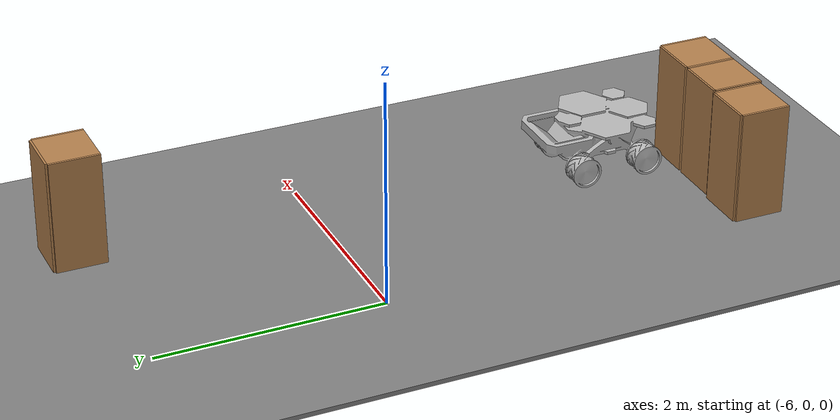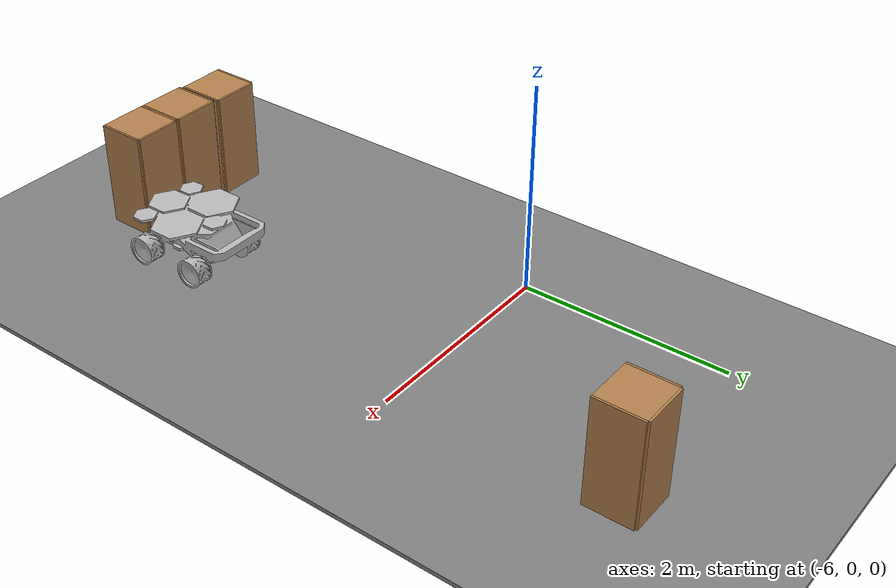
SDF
<sdf version="1.7">
 <world name="default">
  <model name="cabinet_clone">
   <static>1</static>
   <link name="cabinet_bottom_plate">
    <inertial>
     <pose>0 0 -1 0 -0 0</pose>
     <inertia><ixx>2.05</ixx><ixy>0</ixy><ixz>0</ixz><iyy>2.05</iyy><iyz>0</iyz><izz>2.05</izz></inertia>
     <mass>25</mass>
    </inertial>
    <collision name="cabinet_bottom_plate_geom">
     <pose>0 0 0.01 0 -0 0</pose>
     <geometry><box><size>0.45 0.45 0.02</size></box></geometry>
    </collision>
    <visual name="cabinet_bottom_plate_geom_visual">
     <pose>0 0 0.01 0 -0 0</pose>
     <geometry><box><size>0.45 0.45 0.02</size></box></geometry>
     <material>
      <script><uri>file://media/materials/scripts/gazebo.material</uri><name>Gazebo/Wood</name></script>
      <ambient>0.55 0.34 0.16 1</ambient>
      <diffuse>0.55 0.34 0.16 1</diffuse>
      <specular>0.08 0.08 0.08 1</specular>
      <emissive>0 0 0 1</emissive>
     </material>
    </visual>
    <collision name="cabinet_bottom_plate_geom_cabinet_back_plate">
     <pose>0.235 0 0.51 0 -0 0</pose>
     <geometry><box><size>0.02 0.45 1.02</size></box></geometry>
    </collision>
    <visual name="cabinet_bottom_plate_geom_cabinet_back_plate_visual">
     <pose>0.235 0 0.51 0 -0 0</pose>
     <geometry><box><size>0.02 0.45 1.02</size></box></geometry>
     <material>
      <script><uri>file://media/materials/scripts/gazebo.material</uri><name>Gazebo/Wood</name></script>
      <ambient>0.55 0.34 0.16 1</ambient>
      <diffuse>0.55 0.34 0.16 1</diffuse>
      <specular>0.08 0.08 0.08 1</specular>
      <emissive>0 0 0 1</emissive>
     </material>
    </visual>
    <collision name="cabinet_bottom_plate_geom_cabinet_left_plate">
     <pose>0 0.235 0.51 0 -0 0</pose>
     <geometry><box><size>0.45 0.02 1.02</size></box></geometry>
    </collision>
    <visual name="cabinet_bottom_plate_geom_cabinet_left_plate_visual">
     <pose>0 0.235 0.51 0 -0 0</pose>
     <geometry><box><size>0.45 0.02 1.02</size></box></geometry>
     <material>
      <script><uri>file://media/materials/scripts/gazebo.material</uri><name>Gazebo/Wood</name></script>
      <ambient>0.55 0.34 0.16 1</ambient>
      <diffuse>0.55 0.34 0.16 1</diffuse>
      <specular>0.08 0.08 0.08 1</specular>
      <emissive>0 0 0 1</emissive>
     </material>
    </visual>
    <collision name="cabinet_bottom_plate_geom_cabinet_middle_plate">
     <pose>0 0 0.51 0 -0 0</pose>
     <geometry><box><size>0.45 0.45 0.02</size></box></geometry>
    </collision>
    <visual name="cabinet_bottom_plate_geom_cabinet_middle_plate_visual">
     <pose>0 0 0.51 0 -0 0</pose>
     <geometry><box><size>0.45 0.45 0.02</size></box></geometry>
     <material>
      <script><uri>file://media/materials/scripts/gazebo.material</uri><name>Gazebo/Wood</name></script>
      <ambient>0.55 0.34 0.16 1</ambient>
      <diffuse>0.55 0.34 0.16 1</diffuse>
      <specular>0.08 0.08 0.08 1</specular>
      <emissive>0 0 0 1</emissive>
     </material>
    </visual>
    <collision name="cabinet_bottom_plate_geom_cabinet_right_plate">
     <pose>0 -0.235 0.51 0 -0 0</pose>
     <geometry><box><size>0.45 0.02 1.02</size></box></geometry>
    </collision>
    <visual name="cabinet_bottom_plate_geom_cabinet_right_plate_visual">
     <pose>0 -0.235 0.51 0 -0 0</pose>
     <geometry><box><size>0.45 0.02 1.02</size></box></geometry>
     <material>
      <script><uri>file://media/materials/scripts/gazebo.material</uri><name>Gazebo/Wood</name></script>
      <ambient>0.55 0.34 0.16 1</ambient>
      <diffuse>0.55 0.34 0.16 1</diffuse>
      <specular>0.08 0.08 0.08 1</specular>
      <emissive>0 0 0 1</emissive>
     </material>
    </visual>
    <collision name="cabinet_bottom_plate_geom_cabinet_top_plate">
     <pose>0 0 1.01 0 -0 0</pose>
     <geometry><box><size>0.45 0.45 0.02</size></box></geometry>
    </collision>
    <visual name="cabinet_bottom_plate_geom_cabinet_top_plate_visual">
     <pose>0 0 1.01 0 -0 0</pose>
     <geometry><box><size>0.45 0.45 0.02</size></box></geometry>
     <material>
      <script><uri>file://media/materials/scripts/gazebo.material</uri><name>Gazebo/Wood</name></script>
      <ambient>0.55 0.34 0.16 1</ambient>
      <diffuse>0.55 0.34 0.16 1</diffuse>
      <specular>0.08 0.08 0.08 1</specular>
      <emissive>0 0 0 1</emissive>
     </material>
    </visual>
   </link>
   <pose>-5.25916 -3.50994 0 0 -0 1.57</pose>
  </model>
  <model name="cabinet_clone_0">
   <static>1</static>
   <link name="cabinet_bottom_plate">
    <inertial>
     <pose>0 0 -1 0 -0 0</pose>
     <inertia><ixx>2.05</ixx><ixy>0</ixy><ixz>0</ixz><iyy>2.05</iyy><iyz>0</iyz><izz>2.05</izz></inertia>
     <mass>25</mass>
    </inertial>
    <collision name="cabinet_bottom_plate_geom">
     <pose>0 0 0.01 0 -0 0</pose>
     <geometry><box><size>0.45 0.45 0.02</size></box></geometry>
    </collision>
    <visual name="cabinet_bottom_plate_geom_visual">
     <pose>0 0 0.01 0 -0 0</pose>
     <geometry><box><size>0.45 0.45 0.02</size></box></geometry>
     <material>
      <script><uri>file://media/materials/scripts/gazebo.material</uri><name>Gazebo/Wood</name></script>
      <ambient>0.55 0.34 0.16 1</ambient>
      <diffuse>0.55 0.34 0.16 1</diffuse>
      <specular>0.08 0.08 0.08 1</specular>
      <emissive>0 0 0 1</emissive>
     </material>
    </visual>
    <collision name="cabinet_bottom_plate_geom_cabinet_back_plate">
     <pose>0.235 0 0.51 0 -0 0</pose>
     <geometry><box><size>0.02 0.45 1.02</size></box></geometry>
    </collision>
    <visual name="cabinet_bottom_plate_geom_cabinet_back_plate_visual">
     <pose>0.235 0 0.51 0 -0 0</pose>
     <geometry><box><size>0.02 0.45 1.02</size></box></geometry>
     <material>
      <script><uri>file://media/materials/scripts/gazebo.material</uri><name>Gazebo/Wood</name></script>
      <ambient>0.55 0.34 0.16 1</ambient>
      <diffuse>0.55 0.34 0.16 1</diffuse>
      <specular>0.08 0.08 0.08 1</specular>
      <emissive>0 0 0 1</emissive>
     </material>
    </visual>
    <collision name="cabinet_bottom_plate_geom_cabinet_left_plate">
     <pose>0 0.235 0.51 0 -0 0</pose>
     <geometry><box><size>0.45 0.02 1.02</size></box></geometry>
    </collision>
    <visual name="cabinet_bottom_plate_geom_cabinet_left_plate_visual">
     <pose>0 0.235 0.51 0 -0 0</pose>
     <geometry><box><size>0.45 0.02 1.02</size></box></geometry>
     <material>
      <script><uri>file://media/materials/scripts/gazebo.material</uri><name>Gazebo/Wood</name></script>
      <ambient>0.55 0.34 0.16 1</ambient>
      <diffuse>0.55 0.34 0.16 1</diffuse>
      <specular>0.08 0.08 0.08 1</specular>
      <emissive>0 0 0 1</emissive>
     </material>
    </visual>
    <collision name="cabinet_bottom_plate_geom_cabinet_middle_plate">
     <pose>0 0 0.51 0 -0 0</pose>
     <geometry><box><size>0.45 0.45 0.02</size></box></geometry>
    </collision>
    <visual name="cabinet_bottom_plate_geom_cabinet_middle_plate_visual">
     <pose>0 0 0.51 0 -0 0</pose>
     <geometry><box><size>0.45 0.45 0.02</size></box></geometry>
     <material>
      <script><uri>file://media/materials/scripts/gazebo.material</uri><name>Gazebo/Wood</name></script>
      <ambient>0.55 0.34 0.16 1</ambient>
      <diffuse>0.55 0.34 0.16 1</diffuse>
      <specular>0.08 0.08 0.08 1</specular>
      <emissive>0 0 0 1</emissive>
     </material>
    </visual>
    <collision name="cabinet_bottom_plate_geom_cabinet_right_plate">
     <pose>0 -0.235 0.51 0 -0 0</pose>
     <geometry><box><size>0.45 0.02 1.02</size></box></geometry>
    </collision>
    <visual name="cabinet_bottom_plate_geom_cabinet_right_plate_visual">
     <pose>0 -0.235 0.51 0 -0 0</pose>
     <geometry><box><size>0.45 0.02 1.02</size></box></geometry>
     <material>
      <script><uri>file://media/materials/scripts/gazebo.material</uri><name>Gazebo/Wood</name></script>
      <ambient>0.55 0.34 0.16 1</ambient>
      <diffuse>0.55 0.34 0.16 1</diffuse>
      <specular>0.08 0.08 0.08 1</specular>
      <emissive>0 0 0 1</emissive>
     </material>
    </visual>
    <collision name="cabinet_bottom_plate_geom_cabinet_top_plate">
     <pose>0 0 1.01 0 -0 0</pose>
     <geometry><box><size>0.45 0.45 0.02</size></box></geometry>
    </collision>
    <visual name="cabinet_bottom_plate_geom_cabinet_top_plate_visual">
     <pose>0 0 1.01 0 -0 0</pose>
     <geometry><box><size>0.45 0.45 0.02</size></box></geometry>
     <material>
      <script><uri>file://media/materials/scripts/gazebo.material</uri><name>Gazebo/Wood</name></script>
      <ambient>0.55 0.34 0.16 1</ambient>
      <diffuse>0.55 0.34 0.16 1</diffuse>
      <specular>0.08 0.08 0.08 1</specular>
      <emissive>0 0 0 1</emissive>
     </material>
    </visual>
   </link>
   <pose>-4.77375 -3.5118 0 0 -0 1.57</pose>
  </model>
  <model name="mars_rover">
   <static>1</static>
   <link name="link">
    <collision name="solar_panel_collision">
     <pose>0 -0.06945 0.47293 0 -0 0</pose>
     <geometry><box><size>0.87974 0.8821 0.02602</size></box></geometry>
    </collision>
    <collision name="chassis_collision">
     <pose>0 -0.05 0.31475 0 -0 0</pose>
     <geometry><box><size>0.49522 0.67401 0.28915</size></box></geometry>
    </collision>
    <collision name="rear_left_bumper_collision">
     <pose>0.30107 0.3835 0.38976 0 -0 0</pose>
     <geometry><box><size>0.04442 0.38897 0.07918</size></box></geometry>
    </collision>
    <collision name="rear_right_bumper_collision">
     <pose>-0.30107 0.3835 0.38976 0 -0 0</pose>
     <geometry><box><size>0.04442 0.38897 0.07918</size></box></geometry>
    </collision>
    <collision name="rear_bumper_collision">
     <pose>0 0.59414 0.38976 0 -0 0</pose>
     <geometry><box><size>0.56656 0.04442 0.07918</size></box></geometry>
    </collision>
    <collision name="bin_back_panel_collision">
     <pose>0 0.47 0.32114 0.69137 -0 0</pose>
     <geometry><box><size>0.43774 0.212366 0.05173</size></box></geometry>
    </collision>
    <collision name="bin_left_panel_collision1">
     <pose>0.22615 0.32897 0.33193 0 -0 0</pose>
     <geometry><box><size>0.01116 0.19338 0.16304</size></box></geometry>
    </collision>
    <collision name="bin_left_panel_collision2">
     <pose>0.22615 0.471 0.39308 0 -0 0</pose>
     <geometry><box><size>0.01116 0.15 0.04</size></box></geometry>
    </collision>
    <collision name="bin_left_panel_collision3">
     <pose>0.22615 0.45 0.35308 0 -0 0</pose>
     <geometry><box><size>0.01116 0.15 0.04</size></box></geometry>
    </collision>
    <collision name="bin_left_panel_collision4">
     <pose>0.22615 0.39308 0.31308 0 -0 0</pose>
     <geometry><box><size>0.01116 0.15 0.04</size></box></geometry>
    </collision>
    <collision name="bin_right_panel_collision1">
     <pose>-0.22615 0.32897 0.33193 0 -0 0</pose>
     <geometry><box><size>0.01116 0.19338 0.16304</size></box></geometry>
    </collision>
    <collision name="bin_right_panel_collision2">
     <pose>-0.22615 0.471 0.39308 0 -0 0</pose>
     <geometry><box><size>0.01116 0.15 0.04</size></box></geometry>
    </collision>
    <collision name="bin_right_panel_collision3">
     <pose>-0.22615 0.45 0.35308 0 -0 0</pose>
     <geometry><box><size>0.01116 0.15 0.04</size></box></geometry>
    </collision>
    <collision name="bin_right_panel_collision4">
     <pose>-0.22615 0.39308 0.31308 0 -0 0</pose>
     <geometry><box><size>0.01116 0.15 0.04</size></box></geometry>
    </collision>
    <collision name="bin_front_panel_collision">
     <pose>0 0.30047 0.32114 2.26207 -0 0</pose>
     <geometry><box><size>0.43774 0.212366 0.05173</size></box></geometry>
    </collision>
    <collision name="front_left_wheel_collision">
     <pose>0.31103 -0.32115 0.1358 1.5707 0 1.5707</pose>
     <geometry><cylinder><radius>0.1358</radius><length>0.1641</length></cylinder></geometry>
    </collision>
    <collision name="front_right_wheel_collision">
     <pose>-0.31103 -0.32115 0.1358 1.5707 0 1.5707</pose>
     <geometry><cylinder><radius>0.1358</radius><length>0.1641</length></cylinder></geometry>
    </collision>
    <collision name="rear_left_wheel_collision">
     <pose>0.31103 0.28049 0.1358 1.5707 0 1.5707</pose>
     <geometry><cylinder><radius>0.1358</radius><length>0.1641</length></cylinder></geometry>
    </collision>
    <collision name="rear_right_wheel_collision">
     <pose>-0.31103 0.28049 0.1358 1.5707 0 1.5707</pose>
     <geometry><cylinder><radius>0.1358</radius><length>0.1641</length></cylinder></geometry>
    </collision>
    <visual name="visual">
     <geometry><mesh><uri>model://mars_rover/meshes/rover.dae</uri></mesh></geometry>
    </visual>
   </link>
   <pose>-4.55317 -2.65606 0 0 -0 0</pose>
  </model>
  <model name="cabinet_clone_0_clone">
   <static>1</static>
   <link name="cabinet_bottom_plate">
    <inertial>
     <pose>0 0 -1 0 -0 0</pose>
     <inertia><ixx>2.05</ixx><ixy>0</ixy><ixz>0</ixz><iyy>2.05</iyy><iyz>0</iyz><izz>2.05</izz></inertia>
     <mass>25</mass>
    </inertial>
    <collision name="cabinet_bottom_plate_geom">
     <pose>0 0 0.01 0 -0 0</pose>
     <geometry><box><size>0.45 0.45 0.02</size></box></geometry>
    </collision>
    <visual name="cabinet_bottom_plate_geom_visual">
     <pose>0 0 0.01 0 -0 0</pose>
     <geometry><box><size>0.45 0.45 0.02</size></box></geometry>
     <material>
      <script><uri>file://media/materials/scripts/gazebo.material</uri><name>Gazebo/Wood</name></script>
      <ambient>0.55 0.34 0.16 1</ambient>
      <diffuse>0.55 0.34 0.16 1</diffuse>
      <specular>0.08 0.08 0.08 1</specular>
      <emissive>0 0 0 1</emissive>
     </material>
    </visual>
    <collision name="cabinet_bottom_plate_geom_cabinet_back_plate">
     <pose>0.235 0 0.51 0 -0 0</pose>
     <geometry><box><size>0.02 0.45 1.02</size></box></geometry>
    </collision>
    <visual name="cabinet_bottom_plate_geom_cabinet_back_plate_visual">
     <pose>0.235 0 0.51 0 -0 0</pose>
     <geometry><box><size>0.02 0.45 1.02</size></box></geometry>
     <material>
      <script><uri>file://media/materials/scripts/gazebo.material</uri><name>Gazebo/Wood</name></script>
      <ambient>0.55 0.34 0.16 1</ambient>
      <diffuse>0.55 0.34 0.16 1</diffuse>
      <specular>0.08 0.08 0.08 1</specular>
      <emissive>0 0 0 1</emissive>
     </material>
    </visual>
    <collision name="cabinet_bottom_plate_geom_cabinet_left_plate">
     <pose>0 0.235 0.51 0 -0 0</pose>
     <geometry><box><size>0.45 0.02 1.02</size></box></geometry>
    </collision>
    <visual name="cabinet_bottom_plate_geom_cabinet_left_plate_visual">
     <pose>0 0.235 0.51 0 -0 0</pose>
     <geometry><box><size>0.45 0.02 1.02</size></box></geometry>
     <material>
      <script><uri>file://media/materials/scripts/gazebo.material</uri><name>Gazebo/Wood</name></script>
      <ambient>0.55 0.34 0.16 1</ambient>
      <diffuse>0.55 0.34 0.16 1</diffuse>
      <specular>0.08 0.08 0.08 1</specular>
      <emissive>0 0 0 1</emissive>
     </material>
    </visual>
    <collision name="cabinet_bottom_plate_geom_cabinet_middle_plate">
     <pose>0 0 0.51 0 -0 0</pose>
     <geometry><box><size>0.45 0.45 0.02</size></box></geometry>
    </collision>
    <visual name="cabinet_bottom_plate_geom_cabinet_middle_plate_visual">
     <pose>0 0 0.51 0 -0 0</pose>
     <geometry><box><size>0.45 0.45 0.02</size></box></geometry>
     <material>
      <script><uri>file://media/materials/scripts/gazebo.material</uri><name>Gazebo/Wood</name></script>
      <ambient>0.55 0.34 0.16 1</ambient>
      <diffuse>0.55 0.34 0.16 1</diffuse>
      <specular>0.08 0.08 0.08 1</specular>
      <emissive>0 0 0 1</emissive>
     </material>
    </visual>
    <collision name="cabinet_bottom_plate_geom_cabinet_right_plate">
     <pose>0 -0.235 0.51 0 -0 0</pose>
     <geometry><box><size>0.45 0.02 1.02</size></box></geometry>
    </collision>
    <visual name="cabinet_bottom_plate_geom_cabinet_right_plate_visual">
     <pose>0 -0.235 0.51 0 -0 0</pose>
     <geometry><box><size>0.45 0.02 1.02</size></box></geometry>
     <material>
      <script><uri>file://media/materials/scripts/gazebo.material</uri><name>Gazebo/Wood</name></script>
      <ambient>0.55 0.34 0.16 1</ambient>
      <diffuse>0.55 0.34 0.16 1</diffuse>
      <specular>0.08 0.08 0.08 1</specular>
      <emissive>0 0 0 1</emissive>
     </material>
    </visual>
    <collision name="cabinet_bottom_plate_geom_cabinet_top_plate">
     <pose>0 0 1.01 0 -0 0</pose>
     <geometry><box><size>0.45 0.45 0.02</size></box></geometry>
    </collision>
    <visual name="cabinet_bottom_plate_geom_cabinet_top_plate_visual">
     <pose>0 0 1.01 0 -0 0</pose>
     <geometry><box><size>0.45 0.45 0.02</size></box></geometry>
     <material>
      <script><uri>file://media/materials/scripts/gazebo.material</uri><name>Gazebo/Wood</name></script>
      <ambient>0.55 0.34 0.16 1</ambient>
      <diffuse>0.55 0.34 0.16 1</diffuse>
      <specular>0.08 0.08 0.08 1</specular>
      <emissive>0 0 0 1</emissive>
     </material>
    </visual>
   </link>
   <pose>-5.75867 -3.48219 0 0 -0 1.57</pose>
  </model>
  <model name="asphalt_plane">
   <static>1</static>
   <link name="link">
    <collision name="collision"><geometry><box><size>52 48 0.04</size></box></geometry></collision>
    <visual name="visual">
     <cast_shadows>0</cast_shadows>
     <geometry><box><size>52 48 0.04</size></box></geometry>
     <material>
      <ambient>0.5 0.5 0.5 1</ambient>
      <diffuse>0.5 0.5 0.5 1</diffuse>
      <specular>0.2 0.2 0.2 1</specular>
      <emissive>0 0 0 1</emissive>
      <pbr>
       <metal>
        <albedo_map>model://asphalt_plane/materials/textures/tarmac.png</albedo_map>
        <roughness>0.85</roughness>
        <metalness>0</metalness>
       </metal>
      </pbr>
     </material>
    </visual>
   </link>
   <pose>1.0 4.8 -0.02 0 -0 0</pose>
  </model>
  <model name="cabinet_clone_1">
   <static>1</static>
   <link name="cabinet_bottom_plate">
    <inertial>
     <pose>0 0 -1 0 -0 0</pose>
     <inertia><ixx>2.05</ixx><ixy>0</ixy><ixz>0</ixz><iyy>2.05</iyy><iyz>0</iyz><izz>2.05</izz></inertia>
     <mass>25</mass>
    </inertial>
    <collision name="cabinet_bottom_plate_geom">
     <pose>0 0 0.01 0 -0 0</pose>
     <geometry><box><size>0.45 0.45 0.02</size></box></geometry>
    </collision>
    <visual name="cabinet_bottom_plate_geom_visual">
     <pose>0 0 0.01 0 -0 0</pose>
     <geometry><box><size>0.45 0.45 0.02</size></box></geometry>
     <material>
      <script><uri>file://media/materials/scripts/gazebo.material</uri><name>Gazebo/Wood</name></script>
      <ambient>0.55 0.34 0.16 1</ambient>
      <diffuse>0.55 0.34 0.16 1</diffuse>
      <specular>0.08 0.08 0.08 1</specular>
      <emissive>0 0 0 1</emissive>
     </material>
    </visual>
    <collision name="cabinet_bottom_plate_geom_cabinet_back_plate">
     <pose>0.235 0 0.51 0 -0 0</pose>
     <geometry><box><size>0.02 0.45 1.02</size></box></geometry>
    </collision>
    <visual name="cabinet_bottom_plate_geom_cabinet_back_plate_visual">
     <pose>0.235 0 0.51 0 -0 0</pose>
     <geometry><box><size>0.02 0.45 1.02</size></box></geometry>
     <material>
      <script><uri>file://media/materials/scripts/gazebo.material</uri><name>Gazebo/Wood</name></script>
      <ambient>0.55 0.34 0.16 1</ambient>
      <diffuse>0.55 0.34 0.16 1</diffuse>
      <specular>0.08 0.08 0.08 1</specular>
      <emissive>0 0 0 1</emissive>
     </material>
    </visual>
    <collision name="cabinet_bottom_plate_geom_cabinet_left_plate">
     <pose>0 0.235 0.51 0 -0 0</pose>
     <geometry><box><size>0.45 0.02 1.02</size></box></geometry>
    </collision>
    <visual name="cabinet_bottom_plate_geom_cabinet_left_plate_visual">
     <pose>0 0.235 0.51 0 -0 0</pose>
     <geometry><box><size>0.45 0.02 1.02</size></box></geometry>
     <material>
      <script><uri>file://media/materials/scripts/gazebo.material</uri><name>Gazebo/Wood</name></script>
      <ambient>0.55 0.34 0.16 1</ambient>
      <diffuse>0.55 0.34 0.16 1</diffuse>
      <specular>0.08 0.08 0.08 1</specular>
      <emissive>0 0 0 1</emissive>
     </material>
    </visual>
    <collision name="cabinet_bottom_plate_geom_cabinet_middle_plate">
     <pose>0 0 0.51 0 -0 0</pose>
     <geometry><box><size>0.45 0.45 0.02</size></box></geometry>
    </collision>
    <visual name="cabinet_bottom_plate_geom_cabinet_middle_plate_visual">
     <pose>0 0 0.51 0 -0 0</pose>
     <geometry><box><size>0.45 0.45 0.02</size></box></geometry>
     <material>
      <script><uri>file://media/materials/scripts/gazebo.material</uri><name>Gazebo/Wood</name></script>
      <ambient>0.55 0.34 0.16 1</ambient>
      <diffuse>0.55 0.34 0.16 1</diffuse>
      <specular>0.08 0.08 0.08 1</specular>
      <emissive>0 0 0 1</emissive>
     </material>
    </visual>
    <collision name="cabinet_bottom_plate_geom_cabinet_right_plate">
     <pose>0 -0.235 0.51 0 -0 0</pose>
     <geometry><box><size>0.45 0.02 1.02</size></box></geometry>
    </collision>
    <visual name="cabinet_bottom_plate_geom_cabinet_right_plate_visual">
     <pose>0 -0.235 0.51 0 -0 0</pose>
     <geometry><box><size>0.45 0.02 1.02</size></box></geometry>
     <material>
      <script><uri>file://media/materials/scripts/gazebo.material</uri><name>Gazebo/Wood</name></script>
      <ambient>0.55 0.34 0.16 1</ambient>
      <diffuse>0.55 0.34 0.16 1</diffuse>
      <specular>0.08 0.08 0.08 1</specular>
      <emissive>0 0 0 1</emissive>
     </material>
    </visual>
    <collision name="cabinet_bottom_plate_geom_cabinet_top_plate">
     <pose>0 0 1.01 0 -0 0</pose>
     <geometry><box><size>0.45 0.45 0.02</size></box></geometry>
    </collision>
    <visual name="cabinet_bottom_plate_geom_cabinet_top_plate_visual">
     <pose>0 0 1.01 0 -0 0</pose>
     <geometry><box><size>0.45 0.45 0.02</size></box></geometry>
     <material>
      <script><uri>file://media/materials/scripts/gazebo.material</uri><name>Gazebo/Wood</name></script>
      <ambient>0.55 0.34 0.16 1</ambient>
      <diffuse>0.55 0.34 0.16 1</diffuse>
      <specular>0.08 0.08 0.08 1</specular>
      <emissive>0 0 0 1</emissive>
     </material>
    </visual>
   </link>
   <pose>-4.20863 2.07845 0 0 -0 1.57</pose>
  </model>
 </world>
</sdf>
